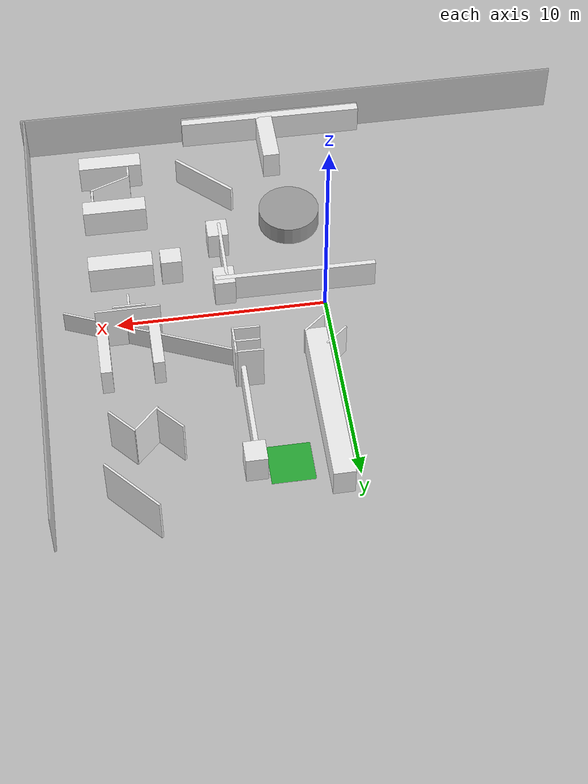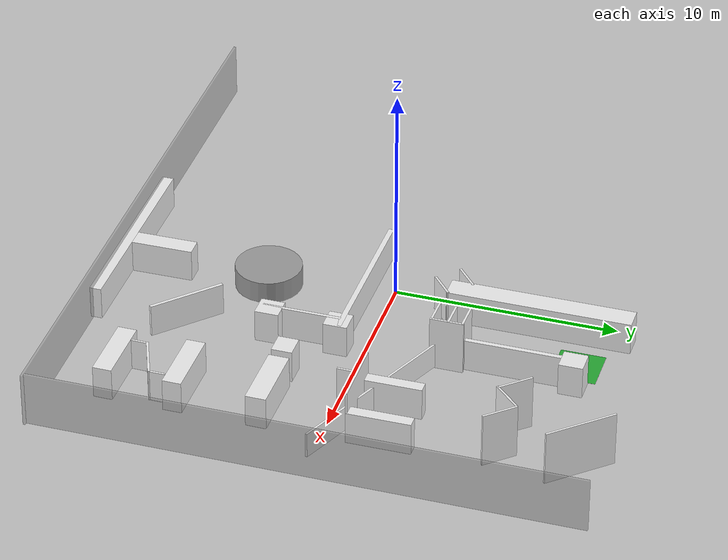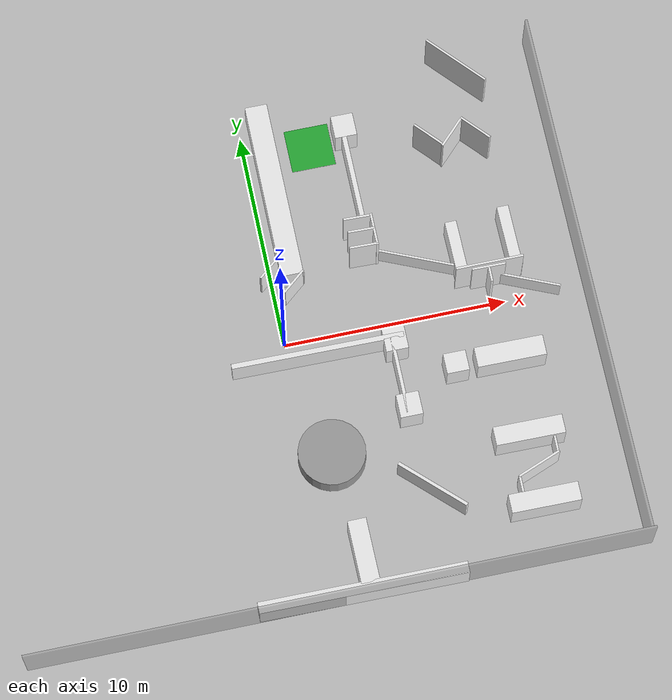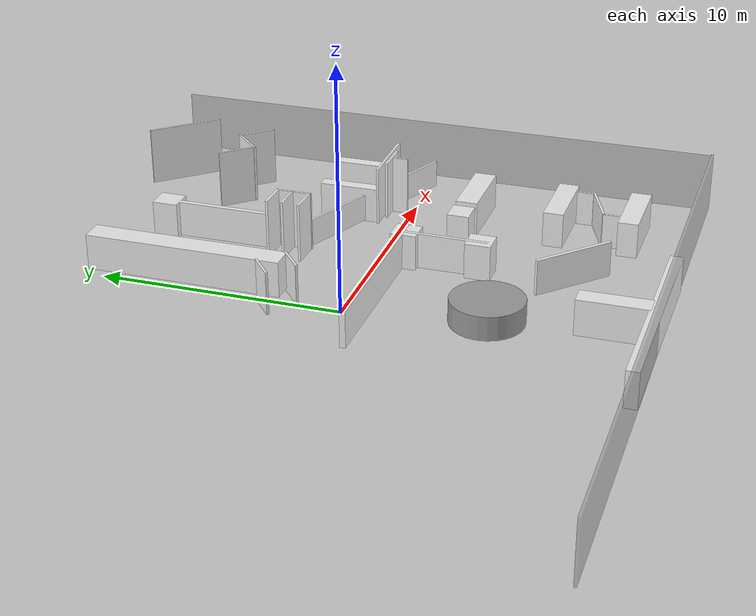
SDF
<sdf version="1.7">
 <world name="default">
  <model name="phi2_area">
   <static>1</static>
   <link name="phi2_area_link">
    <visual name="phi2_area_visual">
     <pose>3.0 9.0 0.001 0 -0 0</pose>
     <geometry><box><size>2.0 2.0 0.001</size></box></geometry>
     <material>
      <script><uri>file://media/materials/scripts/gazebo.material</uri><name>Gazebo/Green</name></script>
      <ambient>0.2 0.8 0.2 0.3</ambient>
      <diffuse>0.2 0.8 0.2 0.3</diffuse>
     </material>
    </visual>
   </link>
  </model>
  <model name="box_1">
   <pose>0.05 -12.05 1.25 0 -0 0</pose>
   <static>1</static>
   <link name="link">
    <collision name="collision"><geometry><box><size>27.4835 0.1 2.5</size></box></geometry></collision>
    <visual name="visual">
     <geometry><box><size>27.4835 0.1 2.5</size></box></geometry>
     <material>
      <script><name>Gazebo/GreyTransparent</name><uri>file://media/materials/scripts/gazebo.material</uri></script>
     </material>
    </visual>
   </link>
  </model>
  <model name="box_2">
   <pose>13.6164 0.05 1.25 0 -0 0</pose>
   <static>1</static>
   <link name="link">
    <collision name="collision"><geometry><box><size>0.1 24.1 2.5</size></box></geometry></collision>
    <visual name="visual">
     <geometry><box><size>0.1 24.1 2.5</size></box></geometry>
     <material>
      <script><name>Gazebo/GreyTransparent</name><uri>file://media/materials/scripts/gazebo.material</uri></script>
     </material>
    </visual>
   </link>
  </model>
  <model name="box_9_clone_clone_9_clone_3">
   <pose>0.923625 6.78613 0.75 0 -0 0</pose>
   <static>1</static>
   <link name="link">
    <collision name="collision"><geometry><box><size>1 8.21069 1.5</size></box></geometry></collision>
    <visual name="visual">
     <geometry><box><size>1 8.21069 1.5</size></box></geometry>
     <material>
      <script><name>Gazebo/White</name><uri>file://media/materials/scripts/gazebo.material</uri></script>
     </material>
    </visual>
   </link>
  </model>
  <model name="box_8_clone_clone_4_clone_1">
   <pose>0.92481 2.34897 0.68407 0 -0 0.698352</pose>
   <static>1</static>
   <link name="link">
    <collision name="collision"><geometry><box><size>1.32603 0.1 1.67648</size></box></geometry></collision>
    <visual name="visual">
     <geometry><box><size>1.32603 0.1 1.67648</size></box></geometry>
     <material>
      <script><name>Gazebo/White</name><uri>file://media/materials/scripts/gazebo.material</uri></script>
     </material>
    </visual>
   </link>
  </model>
  <model name="box_6_clone_clone_4_clone">
   <pose>4.19641 4.36405 1.25 0 -0 1.5473</pose>
   <static>1</static>
   <link name="link">
    <collision name="collision"><geometry><box><size>0.1 1.24868 2.5</size></box></geometry></collision>
    <visual name="visual">
     <geometry><box><size>0.1 1.24868 2.5</size></box></geometry>
     <material>
      <script><name>Gazebo/White</name><uri>file://media/materials/scripts/gazebo.material</uri></script>
     </material>
    </visual>
   </link>
  </model>
  <model name="box_9_clone_clone_5_clone_2_clone_0_clone_2">
   <pose>4.51157 6.4869 0.75 0 -0 0</pose>
   <static>1</static>
   <link name="link">
    <collision name="collision"><geometry><box><size>0.217022 4.27843 1.5</size></box></geometry></collision>
    <visual name="visual">
     <geometry><box><size>0.217022 4.27843 1.5</size></box></geometry>
     <material>
      <script><name>Gazebo/White</name><uri>file://media/materials/scripts/gazebo.material</uri></script>
     </material>
    </visual>
   </link>
  </model>
  <model name="box_6_clone_clone_4_clone_clone">
   <pose>4.24691 3.74326 1.25 0 -0 1.5473</pose>
   <static>1</static>
   <link name="link">
    <collision name="collision"><geometry><box><size>0.1 1.20271 2.5</size></box></geometry></collision>
    <visual name="visual">
     <geometry><box><size>0.1 1.20271 2.5</size></box></geometry>
     <material>
      <script><name>Gazebo/White</name><uri>file://media/materials/scripts/gazebo.material</uri></script>
     </material>
    </visual>
   </link>
  </model>
  <model name="box_6_clone_clone_4_clone_clone_0">
   <pose>4.18218 3.00755 1.25 0 -0 1.5473</pose>
   <static>1</static>
   <link name="link">
    <collision name="collision"><geometry><box><size>0.1 1.22541 2.5</size></box></geometry></collision>
    <visual name="visual">
     <geometry><box><size>0.1 1.22541 2.5</size></box></geometry>
     <material>
      <script><name>Gazebo/White</name><uri>file://media/materials/scripts/gazebo.material</uri></script>
     </material>
    </visual>
   </link>
  </model>
  <model name="box_8_clone_clone_4_clone_1_clone">
   <pose>0.020285 3.21878 0.598648 0 -0 0.698352</pose>
   <static>1</static>
   <link name="link">
    <collision name="collision"><geometry><box><size>1.32602 0.1 1.81655</size></box></geometry></collision>
    <visual name="visual">
     <geometry><box><size>1.32602 0.1 1.81655</size></box></geometry>
     <material>
      <script><name>Gazebo/White</name><uri>file://media/materials/scripts/gazebo.material</uri></script>
     </material>
    </visual>
   </link>
  </model>
  <model name="box_9_clone_clone_5_clone_2_clone_0_clone_2_clone_0_clone">
   <pose>1.29918 -0.998345 0.75 0 -0 1.56359</pose>
   <static>1</static>
   <link name="link">
    <collision name="collision"><geometry><box><size>0.238975 7.6866 1.5</size></box></geometry></collision>
    <visual name="visual">
     <geometry><box><size>0.238975 7.6866 1.5</size></box></geometry>
     <material>
      <script><name>Gazebo/White</name><uri>file://media/materials/scripts/gazebo.material</uri></script>
     </material>
    </visual>
   </link>
  </model>
  <model name="unit_cylinder">
   <pose>0.985425 -5.52499 0.500002 7e-06 7e-06 -0.000698</pose>
   <link name="link">
    <inertial>
     <mass>1</mass>
     <inertia><ixx>0.145833</ixx><ixy>0</ixy><ixz>0</ixz><iyy>0.145833</iyy><iyz>0</iyz><izz>0.125</izz></inertia>
    </inertial>
    <collision name="collision">
     <geometry><cylinder><radius>1.49142</radius><length>1</length></cylinder></geometry>
    </collision>
    <visual name="visual">
     <geometry><cylinder><radius>1.49142</radius><length>1</length></cylinder></geometry>
     <material>
      <script><name>Gazebo/Grey</name><uri>file://media/materials/scripts/gazebo.material</uri></script>
     </material>
    </visual>
   </link>
  </model>
  <model name="box_6_clone_clone_4_clone_clone_1">
   <pose>4.8146 3.66742 1.25 0 0 -0.001309</pose>
   <static>1</static>
   <link name="link">
    <collision name="collision"><geometry><box><size>0.1 1.5 2.5</size></box></geometry></collision>
    <visual name="visual">
     <geometry><box><size>0.1 1.5 2.5</size></box></geometry>
     <material>
      <script><name>Gazebo/White</name><uri>file://media/materials/scripts/gazebo.material</uri></script>
     </material>
    </visual>
   </link>
  </model>
  <model name="box_9_clone_clone_5_clone_2_clone_0_clone_2_clone_0_clone_clone_clone">
   <pose>9.54444 -6.45224 0.75 0 -0 1.56352</pose>
   <static>1</static>
   <link name="link">
    <collision name="collision"><geometry><box><size>0.843798 3.07714 1.5</size></box></geometry></collision>
    <visual name="visual">
     <geometry><box><size>0.843798 3.07714 1.5</size></box></geometry>
     <material>
      <script><name>Gazebo/White</name><uri>file://media/materials/scripts/gazebo.material</uri></script>
     </material>
    </visual>
   </link>
  </model>
  <model name="box_9_clone_clone_5_clone_2_clone_0_clone_2_clone_0_clone_clone_clone_clone">
   <pose>9.54266 -2.76485 0.75 0 -0 1.56352</pose>
   <static>1</static>
   <link name="link">
    <collision name="collision"><geometry><box><size>0.91874 3.07802 1.5</size></box></geometry></collision>
    <visual name="visual">
     <geometry><box><size>0.91874 3.07802 1.5</size></box></geometry>
     <material>
      <script><name>Gazebo/White</name><uri>file://media/materials/scripts/gazebo.material</uri></script>
     </material>
    </visual>
   </link>
  </model>
  <model name="box_6_clone_clone_1_clone">
   <pose>9.63242 -8.01755 0.74041 0 0 -1.19602</pose>
   <static>1</static>
   <link name="link">
    <collision name="collision"><geometry><box><size>0.1 2.10156 1.49114</size></box></geometry></collision>
    <visual name="visual">
     <geometry><box><size>0.1 2.10156 1.49114</size></box></geometry>
     <material>
      <script><name>Gazebo/White</name><uri>file://media/materials/scripts/gazebo.material</uri></script>
     </material>
    </visual>
   </link>
  </model>
  <model name="box_6_clone_clone_4_clone_clone_clone">
   <pose>9.37461 0.934459 1.25 0 -0 1.56028</pose>
   <static>1</static>
   <link name="link">
    <collision name="collision"><geometry><box><size>0.1 1.5 2.5</size></box></geometry></collision>
    <visual name="visual">
     <geometry><box><size>0.1 1.5 2.5</size></box></geometry>
     <material>
      <script><name>Gazebo/White</name><uri>file://media/materials/scripts/gazebo.material</uri></script>
     </material>
    </visual>
   </link>
  </model>
  <model name="box_6_clone_clone_4_clone_clone_clone_0">
   <pose>9.4532 1.11788 1.25 0 -0 1.57422</pose>
   <static>1</static>
   <link name="link">
    <collision name="collision"><geometry><box><size>0.1 3.02222 2.5</size></box></geometry></collision>
    <visual name="visual">
     <geometry><box><size>0.1 3.02222 2.5</size></box></geometry>
     <material>
      <script><name>Gazebo/White</name><uri>file://media/materials/scripts/gazebo.material</uri></script>
     </material>
    </visual>
   </link>
  </model>
  <model name="box_6_clone_clone_4_clone_clone_clone_clone">
   <pose>9.36555 0.57412 1.25 0 -0 3.12409</pose>
   <static>1</static>
   <link name="link">
    <collision name="collision"><geometry><box><size>0.1 0.695313 2.5</size></box></geometry></collision>
    <visual name="visual">
     <geometry><box><size>0.1 0.695313 2.5</size></box></geometry>
     <material>
      <script><name>Gazebo/White</name><uri>file://media/materials/scripts/gazebo.material</uri></script>
     </material>
    </visual>
   </link>
  </model>
  <model name="box_9_clone_clone_5_clone_2_clone_0_clone_2_clone_0_clone_clone_clone_clone_1">
   <pose>8.29292 2.40961 0.75 0 0 -3.13353</pose>
   <static>1</static>
   <link name="link">
    <collision name="collision"><geometry><box><size>0.517731 2.54125 1.5</size></box></geometry></collision>
    <visual name="visual">
     <geometry><box><size>0.517731 2.54125 1.5</size></box></geometry>
     <material>
      <script><name>Gazebo/White</name><uri>file://media/materials/scripts/gazebo.material</uri></script>
     </material>
    </visual>
   </link>
  </model>
  <model name="box_9_clone_clone_5_clone_2_clone_0_clone_2_clone_0_clone_clone_clone_clone_1_clone">
   <pose>10.7143 2.50136 0.75 0 0 -3.13353</pose>
   <static>1</static>
   <link name="link">
    <collision name="collision"><geometry><box><size>0.517731 2.83434 1.5</size></box></geometry></collision>
    <visual name="visual">
     <geometry><box><size>0.517731 2.83434 1.5</size></box></geometry>
     <material>
      <script><name>Gazebo/White</name><uri>file://media/materials/scripts/gazebo.material</uri></script>
     </material>
    </visual>
   </link>
  </model>
  <model name="box_6_clone_clone_clone_0_clone_0_clone_clone_clone">
   <pose>9.16663 7.48045 1.25 0 -0 2.3647</pose>
   <static>1</static>
   <link name="link">
    <collision name="collision"><geometry><box><size>0.1 1.60265 2.5</size></box></geometry></collision>
    <visual name="visual">
     <geometry><box><size>0.1 1.60265 2.5</size></box></geometry>
     <material>
      <script><name>Gazebo/White</name><uri>file://media/materials/scripts/gazebo.material</uri></script>
     </material>
    </visual>
   </link>
  </model>
  <model name="box_6_clone_clone_clone_0_clone_0_clone_2">
   <pose>8.12867 7.55946 1.25 0 0 -2.41059</pose>
   <static>1</static>
   <link name="link">
    <collision name="collision"><geometry><box><size>0.1 1.60265 2.5</size></box></geometry></collision>
    <visual name="visual">
     <geometry><box><size>0.1 1.60265 2.5</size></box></geometry>
     <material>
      <script><name>Gazebo/White</name><uri>file://media/materials/scripts/gazebo.material</uri></script>
     </material>
    </visual>
   </link>
  </model>
  <model name="box_6_clone_clone_clone_0_clone_0_clone_0_clone">
   <pose>10.2349 7.47203 1.25 0 0 -2.41059</pose>
   <static>1</static>
   <link name="link">
    <collision name="collision"><geometry><box><size>0.1 1.60265 2.5</size></box></geometry></collision>
    <visual name="visual">
     <geometry><box><size>0.1 1.60265 2.5</size></box></geometry>
     <material>
      <script><name>Gazebo/White</name><uri>file://media/materials/scripts/gazebo.material</uri></script>
     </material>
    </visual>
   </link>
  </model>
  <model name="box_6_clone_clone_1_clone_0">
   <pose>8.61855 1.50825 0.618044 0 -0 1.16323</pose>
   <static>1</static>
   <link name="link">
    <collision name="collision"><geometry><box><size>0.1 8.30654 1.15985</size></box></geometry></collision>
    <visual name="visual">
     <geometry><box><size>0.1 8.30654 1.15985</size></box></geometry>
     <material>
      <script><name>Gazebo/White</name><uri>file://media/materials/scripts/gazebo.material</uri></script>
     </material>
    </visual>
   </link>
  </model>
  <model name="box_9_clone_clone_5_clone_2_clone_0_clone_2_clone_0_clone_clone">
   <pose>1.05576 -11.8471 0.75 0 -0 1.56352</pose>
   <static>1</static>
   <link name="link">
    <collision name="collision"><geometry><box><size>0.517731 9.1748 1.5</size></box></geometry></collision>
    <visual name="visual">
     <geometry><box><size>0.517731 9.1748 1.5</size></box></geometry>
     <material>
      <script><name>Gazebo/White</name><uri>file://media/materials/scripts/gazebo.material</uri></script>
     </material>
    </visual>
   </link>
  </model>
  <model name="box_9_clone_clone_5_clone_2_clone_0_clone_2_clone_0_clone_clone_clone_clone_1_clone_clone">
   <pose>1.38751 -10.2593 0.75 0 0 -3.13353</pose>
   <static>1</static>
   <link name="link">
    <collision name="collision"><geometry><box><size>0.825522 2.83434 1.5</size></box></geometry></collision>
    <visual name="visual">
     <geometry><box><size>0.825522 2.83434 1.5</size></box></geometry>
     <material>
      <script><name>Gazebo/White</name><uri>file://media/materials/scripts/gazebo.material</uri></script>
     </material>
    </visual>
   </link>
  </model>
  <model name="box_9_clone_clone_5_clone_clone">
   <pose>4.5992 9.15741 0.75 0 -0 0</pose>
   <static>1</static>
   <link name="link">
    <collision name="collision"><geometry><box><size>1 1.06509 1.5</size></box></geometry></collision>
    <visual name="visual">
     <geometry><box><size>1 1.06509 1.5</size></box></geometry>
     <material>
      <script><name>Gazebo/White</name><uri>file://media/materials/scripts/gazebo.material</uri></script>
     </material>
    </visual>
   </link>
  </model>
  <model name="box_6_clone_clone_clone_0_clone_0_clone_2_clone_0">
   <pose>10.0891 10.8411 1.25 0 0 -2.41059</pose>
   <static>1</static>
   <link name="link">
    <collision name="collision"><geometry><box><size>0.1 3.24242 2.5</size></box></geometry></collision>
    <visual name="visual">
     <geometry><box><size>0.1 3.24242 2.5</size></box></geometry>
     <material>
      <script><name>Gazebo/White</name><uri>file://media/materials/scripts/gazebo.material</uri></script>
     </material>
    </visual>
   </link>
  </model>
  <model name="box_9_clone_clone_5_clone_2_clone_0_clone_2_clone_0_clone_clone_clone_clone_0">
   <pose>9.53139 -9.54857 0.75 0 -0 1.56352</pose>
   <static>1</static>
   <link name="link">
    <collision name="collision"><geometry><box><size>0.843798 3.07714 1.5</size></box></geometry></collision>
    <visual name="visual">
     <geometry><box><size>0.843798 3.07714 1.5</size></box></geometry>
     <material>
      <script><name>Gazebo/White</name><uri>file://media/materials/scripts/gazebo.material</uri></script>
     </material>
    </visual>
   </link>
  </model>
  <model name="box_9_clone_clone_5_clone_2_clone_0_clone_2_clone_0_clone_clone_0_clone">
   <pose>4.9281 -7.96233 0.75 0 0 -2.33603</pose>
   <static>1</static>
   <link name="link">
    <collision name="collision"><geometry><box><size>0.149813 3.48664 1.5</size></box></geometry></collision>
    <visual name="visual">
     <geometry><box><size>0.149813 3.48664 1.5</size></box></geometry>
     <material>
      <script><name>Gazebo/White</name><uri>file://media/materials/scripts/gazebo.material</uri></script>
     </material>
    </visual>
   </link>
  </model>
  <model name="box_9_clone_clone_5_clone_2_clone_0_clone_2_clone_0_clone_clone_0_clone_clone">
   <pose>4.59014 -2.84305 0.75 0 -0 3.14009</pose>
   <static>1</static>
   <link name="link">
    <collision name="collision"><geometry><box><size>0.149813 3.48664 1.5</size></box></geometry></collision>
    <visual name="visual">
     <geometry><box><size>0.149813 3.48664 1.5</size></box></geometry>
     <material>
      <script><name>Gazebo/White</name><uri>file://media/materials/scripts/gazebo.material</uri></script>
     </material>
    </visual>
   </link>
  </model>
  <model name="box_9_clone_clone_5_clone_clone_clone_0">
   <pose>4.7058 -4.24546 0.75 0 -0 0</pose>
   <static>1</static>
   <link name="link">
    <collision name="collision"><geometry><box><size>1 1.06509 1.5</size></box></geometry></collision>
    <visual name="visual">
     <geometry><box><size>1 1.06509 1.5</size></box></geometry>
     <material>
      <script><name>Gazebo/White</name><uri>file://media/materials/scripts/gazebo.material</uri></script>
     </material>
    </visual>
   </link>
  </model>
  <model name="box_9_clone_clone_5_clone_clone_clone_2">
   <pose>7.1184 -2.76878 0.75 0 -0 0</pose>
   <static>1</static>
   <link name="link">
    <collision name="collision"><geometry><box><size>1 0.921639 1.5</size></box></geometry></collision>
    <visual name="visual">
     <geometry><box><size>1 0.921639 1.5</size></box></geometry>
     <material>
      <script><name>Gazebo/White</name><uri>file://media/materials/scripts/gazebo.material</uri></script>
     </material>
    </visual>
   </link>
  </model>
  <model name="box_6_clone_clone_4_clone_clone_clone_clone_clone_0">
   <pose>10.5612 -7.26456 0.728231 0 -0 3.12409</pose>
   <static>1</static>
   <link name="link">
    <collision name="collision"><geometry><box><size>0.1 0.695313 1.468</size></box></geometry></collision>
    <visual name="visual">
     <geometry><box><size>0.1 0.695313 1.468</size></box></geometry>
     <material>
      <script><name>Gazebo/White</name><uri>file://media/materials/scripts/gazebo.material</uri></script>
     </material>
    </visual>
   </link>
  </model>
  <model name="box_6_clone_clone_4_clone_clone_clone_clone_clone_0_clone">
   <pose>8.67421 -8.77015 0.728231 0 -0 3.12409</pose>
   <static>1</static>
   <link name="link">
    <collision name="collision"><geometry><box><size>0.1 0.772875 1.468</size></box></geometry></collision>
    <visual name="visual">
     <geometry><box><size>0.1 0.772875 1.468</size></box></geometry>
     <material>
      <script><name>Gazebo/White</name><uri>file://media/materials/scripts/gazebo.material</uri></script>
     </material>
    </visual>
   </link>
  </model>
  <model name="box_9_clone_clone_5_clone_clone_clone_1_clone">
   <pose>4.72909 -1.1665 0.75 0 -0 0</pose>
   <static>1</static>
   <link name="link">
    <collision name="collision"><geometry><box><size>1 1.06509 1.5</size></box></geometry></collision>
    <visual name="visual">
     <geometry><box><size>1 1.06509 1.5</size></box></geometry>
     <material>
      <script><name>Gazebo/White</name><uri>file://media/materials/scripts/gazebo.material</uri></script>
     </material>
    </visual>
   </link>
  </model>
  <model name="camera">
   <link name="camera">
    <inertial>
     <mass>1e-05</mass>
     <inertia><ixx>1e-06</ixx><ixy>0</ixy><ixz>0</ixz><iyy>1e-06</iyy><iyz>0</iyz><izz>1e-06</izz></inertia>
    </inertial>
    <collision name="camera_collision"><geometry><box><size>0.001 0.001 0.001</size></box></geometry></collision>
    <visual name="camera_visual"><geometry><box><size>0.001 0.001 0.001</size></box></geometry></visual>
    <sensor name="camera" type="camera">
     <update_rate>15</update_rate>
     <camera name="head">
      <horizontal_fov>2</horizontal_fov>
      <image><width>320</width><height>180</height><format>R8G8B8</format></image>
      <clip><near>0.1</near><far>200</far></clip>
     </camera>
     <plugin name="camera_controller" filename="libgazebo_ros_camera.so">
      <alwaysOn>1</alwaysOn>
      <updateRate>0.0</updateRate>
      <cameraName>camera</cameraName>
      <imageTopicName>image</imageTopicName>
      <cameraInfoTopicName>camera_info</cameraInfoTopicName>
      <frameName>camera</frameName>
      <hackBaseline>0.0</hackBaseline>
      <distortionK1>0.0</distortionK1>
      <distortionK2>0.0</distortionK2>
      <distortionK3>0.0</distortionK3>
      <distortionT1>0.0</distortionT1>
      <distortionT2>0.0</distortionT2>
      <robotNamespace>/</robotNamespace>
     </plugin>
    </sensor>
   </link>
   <pose>0 0 0.75 0 -0 0</pose>
  </model>
 </world>
</sdf>
